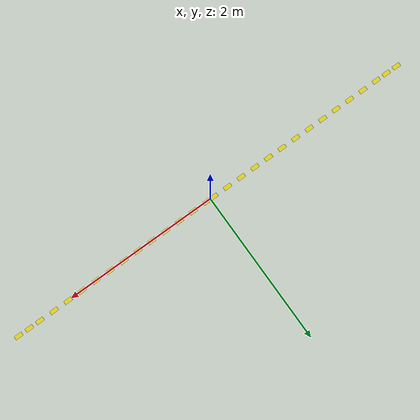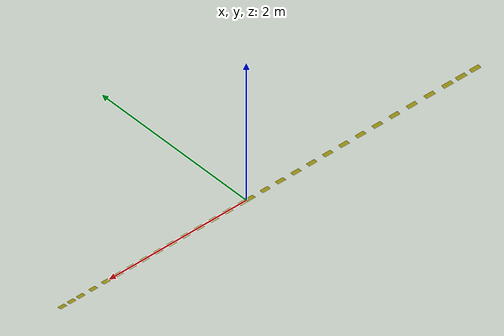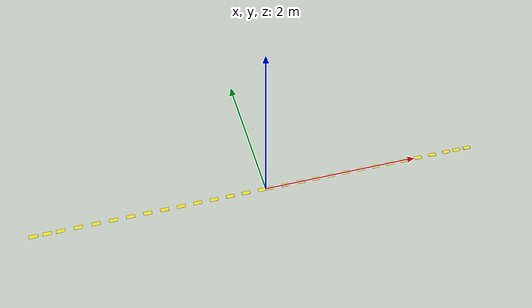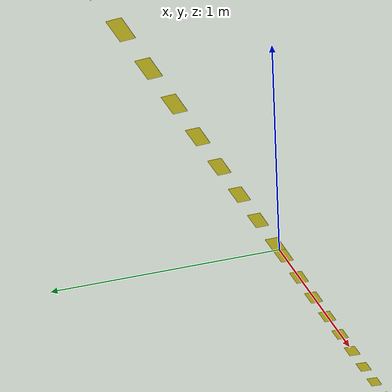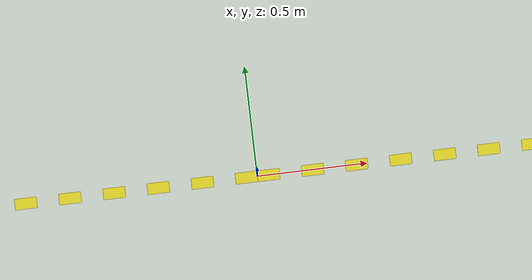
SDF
<?xml version='1.0'?>
<sdf version='1.6'>
  <model name='dashedLine560cm'>
    <link name='link_1'>
      <inertial>
        <mass>1</mass>
        <inertia>
          <ixx>0.166667</ixx>
          <ixy>0</ixy>
          <ixz>0</ixz>
          <iyy>0.166667</iyy>
          <iyz>0</iyz>
          <izz>0.166667</izz>
        </inertia>
        <pose frame=''>0 0 0 0 -0 0</pose>
      </inertial>
      <pose frame=''>0 0 0 0 -0 0</pose>
      <gravity>1</gravity>
      <self_collide>0</self_collide>
      <kinematic>0</kinematic>
      <enable_wind>0</enable_wind>
      <visual name='visual'>
        <pose frame=''>2.75 0 0 0 -0 0</pose>
        <geometry>
          <box>
            <size>0.1 0.05 0.001</size>
          </box>
        </geometry>
        <material>
          <lighting>1</lighting>
          <script>
            <uri>file://media/materials/scripts/gazebo.material</uri>
            <name>Gazebo/Yellow </name>
          </script>
        </material>
      </visual>
      <visual name='ModelPreview_2::link_1::visual_1'>
        <pose frame=''>2.6 0 0 0 -0 0</pose>
        <geometry>
          <box>
            <size>0.1 0.05 0.001</size>
          </box>
        </geometry>
        <material>
          <lighting>1</lighting>
          <script>
            <uri>file://media/materials/scripts/gazebo.material</uri>
            <name>Gazebo/Yellow </name>
          </script>
        </material>
      </visual>
      <visual name='ModelPreview_2::link_1::visual_2'>
        <pose frame=''>2.45 0 0 0 -0 0</pose>
        <geometry>
          <box>
            <size>0.1 0.05 0.001</size>
          </box>
        </geometry>
        <material>
          <lighting>1</lighting>
          <script>
            <uri>file://media/materials/scripts/gazebo.material</uri>
            <name>Gazebo/Yellow </name>
          </script>
        </material>
      </visual>
      <visual name='ModelPreview_2::link_1::visual_3'>
        <pose frame=''>2.25 0 0 0 -0 0</pose>
        <geometry>
          <box>
            <size>0.1 0.05 0.001</size>
          </box>
        </geometry>
        <material>
          <lighting>1</lighting>
          <script>
            <uri>file://media/materials/scripts/gazebo.material</uri>
            <name>Gazebo/Yellow </name>
          </script>
        </material>
      </visual>
      <visual name='ModelPreview_2::link_1::visual_4'>
        <pose frame=''>2.05 0 0 0 -0 0</pose>
        <geometry>
          <box>
            <size>0.1 0.05 0.001</size>
          </box>
        </geometry>
        <material>
          <lighting>1</lighting>
          <script>
            <uri>file://media/materials/scripts/gazebo.material</uri>
            <name>Gazebo/Yellow </name>
          </script>
        </material>
      </visual>
      <visual name='ModelPreview_2::link_1::visual_5'>
        <pose frame=''>1.85 0 0 0 -0 0</pose>
        <geometry>
          <box>
            <size>0.1 0.05 0.001</size>
          </box>
        </geometry>
        <material>
          <lighting>1</lighting>
          <script>
            <uri>file://media/materials/scripts/gazebo.material</uri>
            <name>Gazebo/Yellow </name>
          </script>
        </material>
      </visual>
      <visual name='ModelPreview_2::link_1::visual_6'>
        <pose frame=''>1.65 0 0 0 -0 0</pose>
        <geometry>
          <box>
            <size>0.1 0.05 0.001</size>
          </box>
        </geometry>
        <material>
          <lighting>1</lighting>
          <script>
            <uri>file://media/materials/scripts/gazebo.material</uri>
            <name>Gazebo/Yellow </name>
          </script>
        </material>
      </visual>
      <visual name='ModelPreview_2::link_1::visual_7'>
        <pose frame=''>1.45 0 0 0 -0 0</pose>
        <geometry>
          <box>
            <size>0.1 0.05 0.001</size>
          </box>
        </geometry>
        <material>
          <lighting>1</lighting>
          <script>
            <uri>file://media/materials/scripts/gazebo.material</uri>
            <name>Gazebo/Yellow </name>
          </script>
        </material>
      </visual>
      <visual name='ModelPreview_2::link_1::visual_8'>
        <pose frame=''>1.25 0 0 0 -0 0</pose>
        <geometry>
          <box>
            <size>0.1 0.05 0.001</size>
          </box>
        </geometry>
        <material>
          <lighting>1</lighting>
          <script>
            <uri>file://media/materials/scripts/gazebo.material</uri>
            <name>Gazebo/Yellow </name>
          </script>
        </material>
      </visual>
      <visual name='ModelPreview_2::link_1::visual_9'>
        <pose frame=''>1.05 0 0 0 -0 0</pose>
        <geometry>
          <box>
            <size>0.1 0.05 0.001</size>
          </box>
        </geometry>
        <material>
          <lighting>1</lighting>
          <script>
            <uri>file://media/materials/scripts/gazebo.material</uri>
            <name>Gazebo/Yellow </name>
          </script>
        </material>
      </visual>
      <visual name='ModelPreview_2::link_1::visual_10'>
        <pose frame=''>0.85 0 0 0 -0 0</pose>
        <geometry>
          <box>
            <size>0.1 0.05 0.001</size>
          </box>
        </geometry>
        <material>
          <lighting>1</lighting>
          <script>
            <uri>file://media/materials/scripts/gazebo.material</uri>
            <name>Gazebo/Yellow </name>
          </script>
        </material>
      </visual>
      <visual name='ModelPreview_2::link_1::visual_11'>
        <pose frame=''>0.65 0 0 0 -0 0</pose>
        <geometry>
          <box>
            <size>0.1 0.05 0.001</size>
          </box>
        </geometry>
        <material>
          <lighting>1</lighting>
          <script>
            <uri>file://media/materials/scripts/gazebo.material</uri>
            <name>Gazebo/Yellow </name>
          </script>
        </material>
      </visual>
      <visual name='ModelPreview_2::link_1::visual_12'>
        <pose frame=''>0.45 0 0 0 -0 0</pose>
        <geometry>
          <box>
            <size>0.1 0.05 0.001</size>
          </box>
        </geometry>
        <material>
          <lighting>1</lighting>
          <script>
            <uri>file://media/materials/scripts/gazebo.material</uri>
            <name>Gazebo/Yellow </name>
          </script>
        </material>
      </visual>
      <visual name='ModelPreview_2::link_1::visual_13'>
        <pose frame=''>0.25 0 0 0 -0 0</pose>
        <geometry>
          <box>
            <size>0.1 0.05 0.001</size>
          </box>
        </geometry>
        <material>
          <lighting>1</lighting>
          <script>
            <uri>file://media/materials/scripts/gazebo.material</uri>
            <name>Gazebo/Yellow </name>
          </script>
        </material>
      </visual>
      <visual name='ModelPreview_2::link_1::visual_14'>
        <pose frame=''>-0.05 0 0 0 -0 0</pose>
        <geometry>
          <box>
            <size>0.1 0.05 0.001</size>
          </box>
        </geometry>
        <material>
          <lighting>1</lighting>
          <script>
            <uri>file://media/materials/scripts/gazebo.material</uri>
            <name>Gazebo/Yellow </name>
          </script>
        </material>
      </visual>
      <visual name='ModelPreview_2::link_1::visual_15'>
        <pose frame=''>-0.25 0 0 0 -0 0</pose>
        <geometry>
          <box>
            <size>0.1 0.05 0.001</size>
          </box>
        </geometry>
        <material>
          <lighting>1</lighting>
          <script>
            <uri>file://media/materials/scripts/gazebo.material</uri>
            <name>Gazebo/Yellow </name>
          </script>
        </material>
      </visual>
      <visual name='ModelPreview_2::link_1::visual_16'>
        <pose frame=''>-0.45 0 0 0 -0 0</pose>
        <geometry>
          <box>
            <size>0.1 0.05 0.001</size>
          </box>
        </geometry>
        <material>
          <lighting>1</lighting>
          <script>
            <uri>file://media/materials/scripts/gazebo.material</uri>
            <name>Gazebo/Yellow </name>
          </script>
        </material>
      </visual>
      <visual name='ModelPreview_2::link_1::visual_17'>
        <pose frame=''>-0.65 0 0 0 -0 0</pose>
        <geometry>
          <box>
            <size>0.1 0.05 0.001</size>
          </box>
        </geometry>
        <material>
          <lighting>1</lighting>
          <script>
            <uri>file://media/materials/scripts/gazebo.material</uri>
            <name>Gazebo/Yellow </name>
          </script>
        </material>
      </visual>
      <visual name='ModelPreview_2::link_1::visual_18'>
        <pose frame=''>-0.85 0 0 0 -0 0</pose>
        <geometry>
          <box>
            <size>0.1 0.05 0.001</size>
          </box>
        </geometry>
        <material>
          <lighting>1</lighting>
          <script>
            <uri>file://media/materials/scripts/gazebo.material</uri>
            <name>Gazebo/Yellow </name>
          </script>
        </material>
      </visual>
      <visual name='ModelPreview_2::link_1::visual_19'>
        <pose frame=''>-1.05 0 0 0 -0 0</pose>
        <geometry>
          <box>
            <size>0.1 0.05 0.001</size>
          </box>
        </geometry>
        <material>
          <lighting>1</lighting>
          <script>
            <uri>file://media/materials/scripts/gazebo.material</uri>
            <name>Gazebo/Yellow </name>
          </script>
        </material>
      </visual>
      <visual name='ModelPreview_2::link_1::visual_20'>
        <pose frame=''>-1.25 0 0 0 -0 0</pose>
        <geometry>
          <box>
            <size>0.1 0.05 0.001</size>
          </box>
        </geometry>
        <material>
          <lighting>1</lighting>
          <script>
            <uri>file://media/materials/scripts/gazebo.material</uri>
            <name>Gazebo/Yellow </name>
          </script>
        </material>
      </visual>
      <visual name='ModelPreview_2::link_1::visual_21'>
        <pose frame=''>-1.45 0 0 0 -0 0</pose>
        <geometry>
          <box>
            <size>0.1 0.05 0.001</size>
          </box>
        </geometry>
        <material>
          <lighting>1</lighting>
          <script>
            <uri>file://media/materials/scripts/gazebo.material</uri>
            <name>Gazebo/Yellow </name>
          </script>
        </material>
      </visual>
      <visual name='ModelPreview_2::link_1::visual_22'>
        <pose frame=''>-1.65 0 0 0 -0 0</pose>
        <geometry>
          <box>
            <size>0.1 0.05 0.001</size>
          </box>
        </geometry>
        <material>
          <lighting>1</lighting>
          <script>
            <uri>file://media/materials/scripts/gazebo.material</uri>
            <name>Gazebo/Yellow </name>
          </script>
        </material>
      </visual>
      <visual name='ModelPreview_2::link_1::visual_23'>
        <pose frame=''>-1.85 0 0 0 -0 0</pose>
        <geometry>
          <box>
            <size>0.1 0.05 0.001</size>
          </box>
        </geometry>
        <material>
          <lighting>1</lighting>
          <script>
            <uri>file://media/materials/scripts/gazebo.material</uri>
            <name>Gazebo/Yellow </name>
          </script>
        </material>
      </visual>
      <visual name='ModelPreview_2::link_1::visual_24'>
        <pose frame=''>-2.05 0 0 0 -0 0</pose>
        <geometry>
          <box>
            <size>0.1 0.05 0.001</size>
          </box>
        </geometry>
        <material>
          <lighting>1</lighting>
          <script>
            <uri>file://media/materials/scripts/gazebo.material</uri>
            <name>Gazebo/Yellow </name>
          </script>
        </material>
      </visual>
      <visual name='ModelPreview_2::link_1::visual_25'>
        <pose frame=''>-2.25 0 0 0 -0 0</pose>
        <geometry>
          <box>
            <size>0.1 0.05 0.001</size>
          </box>
        </geometry>
        <material>
          <lighting>1</lighting>
          <script>
            <uri>file://media/materials/scripts/gazebo.material</uri>
            <name>Gazebo/Yellow </name>
          </script>
        </material>
      </visual>
      <visual name='ModelPreview_2::link_1::visual_26'>
        <pose frame=''>-2.45 0 0 0 -0 0</pose>
        <geometry>
          <box>
            <size>0.1 0.05 0.001</size>
          </box>
        </geometry>
        <material>
          <lighting>1</lighting>
          <script>
            <uri>file://media/materials/scripts/gazebo.material</uri>
            <name>Gazebo/Yellow </name>
          </script>
        </material>
      </visual>
      <visual name='ModelPreview_2::link_1::visual_27'>
        <pose frame=''>-2.6 0 0 0 -0 0</pose>
        <geometry>
          <box>
            <size>0.1 0.05 0.001</size>
          </box>
        </geometry>
        <material>
          <lighting>1</lighting>
          <script>
            <uri>file://media/materials/scripts/gazebo.material</uri>
            <name>Gazebo/Yellow </name>
          </script>
        </material>
      </visual>
      <visual name='ModelPreview_2::link_1::visual_28'>
        <pose frame=''>-2.75 0 0 0 -0 0</pose>
        <geometry>
          <box>
            <size>0.1 0.05 0.001</size>
          </box>
        </geometry>
        <material>
          <lighting>1</lighting>
          <script>
            <uri>file://media/materials/scripts/gazebo.material</uri>
            <name>Gazebo/Yellow </name>
          </script>
        </material>
      </visual>
      <visual name='ModelPreview_2::link_1::visual_29'>
        <pose frame=''>0.05 0 0 0 -0 0</pose>
        <geometry>
          <box>
            <size>0.1 0.05 0.001</size>
          </box>
        </geometry>
        <material>
          <lighting>1</lighting>
          <script>
            <uri>file://media/materials/scripts/gazebo.material</uri>
            <name>Gazebo/Yellow </name>
          </script>
        </material>
      </visual>
      <collision name='collision'>
        <laser_retro>0</laser_retro>
        <max_contacts>10</max_contacts>
        <pose frame=''>0 0 0 0 -0 0</pose>
        <geometry>
          <box>
            <size>0.1 0.05 1e-05</size>
          </box>
        </geometry>
        <surface>
          <friction>
            <ode>
              <mu>1</mu>
              <mu2>1</mu2>
              <fdir1>0 0 0</fdir1>
              <slip1>0</slip1>
              <slip2>0</slip2>
            </ode>
            <torsional>
              <coefficient>1</coefficient>
              <patch_radius>0</patch_radius>
              <surface_radius>0</surface_radius>
              <use_patch_radius>1</use_patch_radius>
              <ode>
                <slip>0</slip>
              </ode>
            </torsional>
          </friction>
          <bounce>
            <restitution_coefficient>0</restitution_coefficient>
            <threshold>1e+06</threshold>
          </bounce>
          <contact>
            <collide_without_contact>0</collide_without_contact>
            <collide_without_contact_bitmask>1</collide_without_contact_bitmask>
            <collide_bitmask>1</collide_bitmask>
            <ode>
              <soft_cfm>0</soft_cfm>
              <soft_erp>0.2</soft_erp>
              <kp>1e+13</kp>
              <kd>1</kd>
              <max_vel>0.01</max_vel>
              <min_depth>0</min_depth>
            </ode>
            <bullet>
              <split_impulse>1</split_impulse>
              <split_impulse_penetration_threshold>-0.01</split_impulse_penetration_threshold>
              <soft_cfm>0</soft_cfm>
              <soft_erp>0.2</soft_erp>
              <kp>1e+13</kp>
              <kd>1</kd>
            </bullet>
          </contact>
        </surface>
      </collision>
    </link>
    <static>1</static>
    <allow_auto_disable>1</allow_auto_disable>
  </model>
</sdf>
